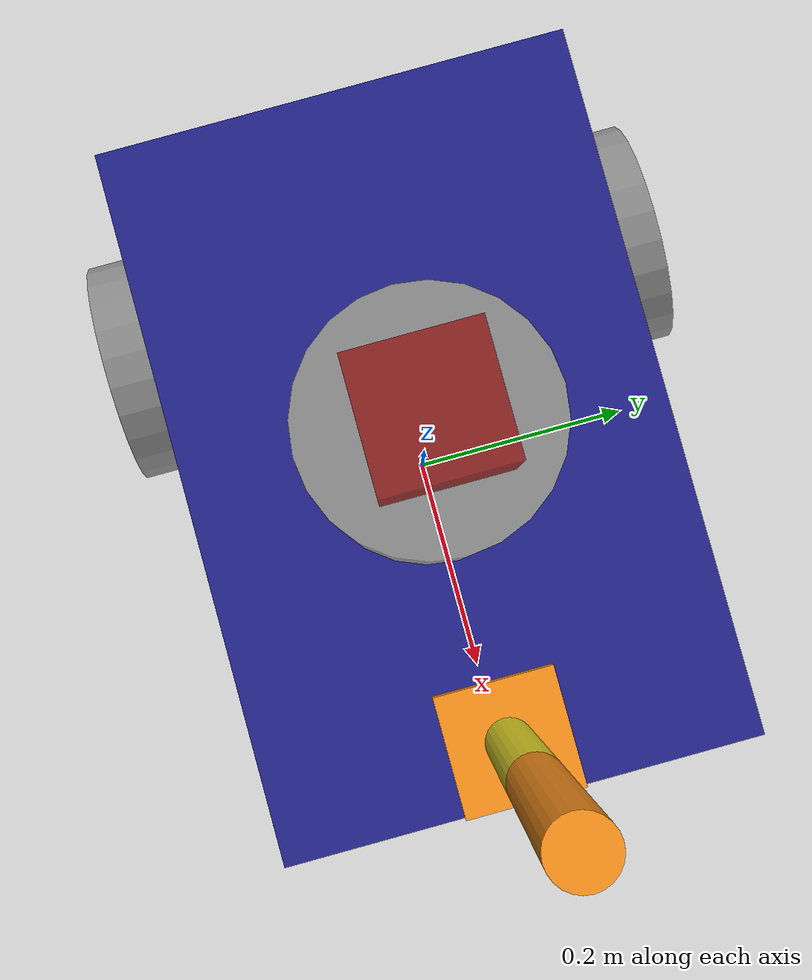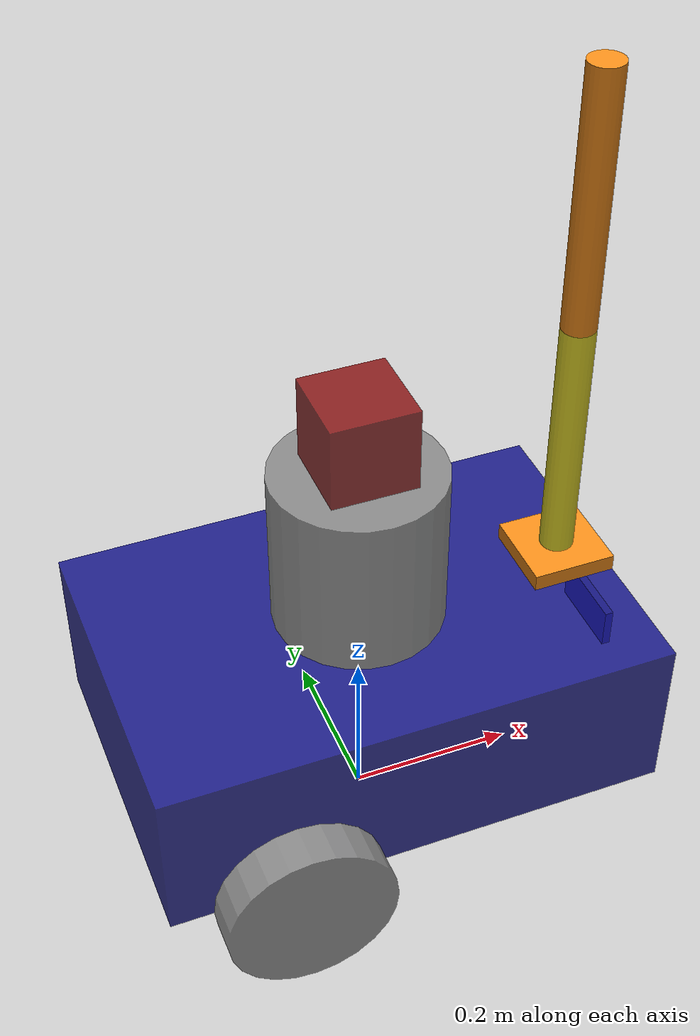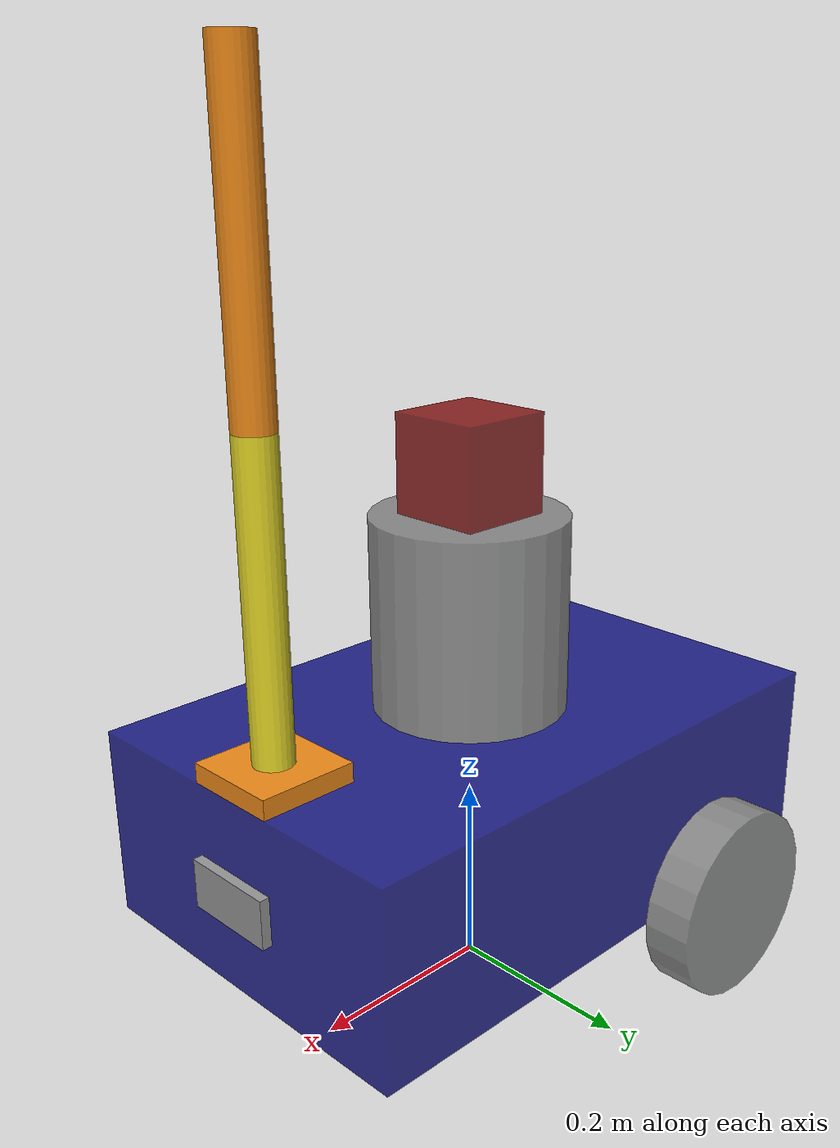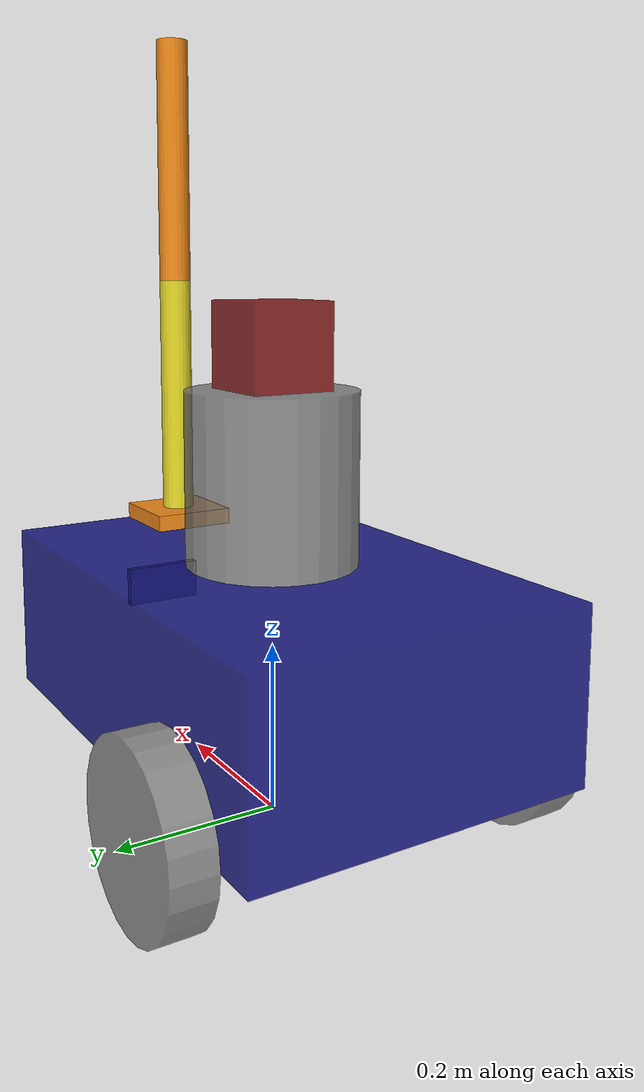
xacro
<?xml version="1.0"?>
<robot name="cagopa_robot" xmlns:xacro="http://www.ros.org/wiki/xacro">

    <xacro:include filename="common_properties.xacro"/>
    <xacro:include filename="mobile_base.xacro"/>
    <xacro:include filename="mobile_base_gazebo.xacro"/>
    --<xacro:include filename="camera.xacro"/>
    <xacro:include filename="arm_properties.xacro"/>
    <xacro:include filename="arm.xacro"/>

    <joint name="base_arm_base_joint" type="fixed">
        <parent link="base_link"/>
        <child link="arm_base_link"/>
        <origin xyz="${(base_length/2.0)-(0.1/2.0)} 0 ${base_height}" rpy="0 0 0"/>

    </joint>
</robot>

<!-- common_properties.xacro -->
<robot xmlns:xacro="http://www.ros.org/wiki/xacro">

    <material name="blue">
        <color rgba="0 0 0.5 0.8" />
    </material>

    <material name="gray">
        <color rgba="0.5 0.5 0.5 0.8"/>
    </material>

    <material name="red">
        <color rgba="0.5 0 0 0.8" />
    </material>

    <xacro:macro name="box_inertia" params="m l w h xyz rpy">
        <inertial>
            <origin xyz="${xyz}" rpy="${rpy}"/>
            <mass value="${m}"/>
            <inertia ixx="${(m/12.0)*(h*h +l*l)}" ixy="0.0" ixz="0.0" iyy="${(m/12.0)*(w*w +l*l)}" iyz="0.0" izz="${(m/12.0)*(w*w +h*h)}"/>
        </inertial>
    </xacro:macro>

    <xacro:macro name="cylinder_inertia" params="m r l xyz rpy">
        <inertial>
            <origin xyz="${xyz}" rpy="${rpy}"/>
            <mass value="${m}"/>
            <inertia ixx="${(m/12.0)*(3*(r*r)+(l*l))}" ixy="0" ixz="0" iyy="${(m/12.0)*(3*(r*r)+(l*l))}" iyz="0" izz="${m/2.0*(r*r)}"/>
        </inertial>
    </xacro:macro>

    <xacro:macro name="sphere_inertia" params="m r xyz rpy">
        <inertial>
            <origin xyz="${xyz}" rpy="${rpy}"/>
            <mass value="${m}"/>
            <inertia ixx="${2.0/5.0 *(m*r*r)}" ixy="0" ixz="0" iyy="${2.0/5.0 *(m*r*r)}" iyz="0" izz="${2.0/5.0 *(m*r*r)}"/>
        </inertial>
    </xacro:macro>
</robot>

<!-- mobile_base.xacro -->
<robot xmlns:xacro="http://www.ros.org/wiki/xacro">

    <xacro:property name="base_length" value="0.6" />
    <xacro:property name="base_width" value="0.4" />
    <xacro:property name="base_height" value="0.2" />
    <xacro:property name="wheel_radius" value="0.1" />
    <xacro:property name="wheel_length" value="0.05" />
    <xacro:property name="box_length" value="0.1" />
    <xacro:property name="second_link_height" value="0.2" />
    <xacro:property name="second_link_radius" value="0.1" />
    <xacro:property name="wheel_mass" value="1.0" />
    <xacro:property name="caster_wheel_mass" value="0.5" />
    <xacro:property name="box_mass" value="5.0" />

    <link name="base_link">
        <visual>
            <geometry>
                <box size="${base_length} ${base_width} ${base_height}" />
            </geometry>
            <origin xyz="0 0 ${base_height/2.0}" rpy="0 0 0" />
            <material name="blue"/>
        </visual>
        <collision>
            <geometry>
                <box size="${base_length} ${base_width} ${base_height}" />
            </geometry>
            <origin xyz="0 0 ${base_height/2.0}" rpy="0 0 0" />
        </collision>
        <xacro:box_inertia m="${box_mass}" l="${2*base_length}" w="${2*base_width}" h="${2*base_height}"
                           xyz="0 0 ${base_height/2.0}" rpy="0 0 0"/>
    </link>

    <xacro:macro name="wheel_link" params="prefix">
        <link name="${prefix}_wheel_link">
            <visual>
                <geometry>
                    <cylinder radius="${wheel_radius}" length="${wheel_length}"/>
                </geometry>
                <origin xyz="0 0 0" rpy="${pi / 2.0} 0 0"/>
                <material name="gray"/>
            </visual>
            <collision>
                <geometry>
                    <cylinder radius="${wheel_radius}" length="${wheel_length}"/>
                </geometry>
                <origin xyz="0 0 0" rpy="${pi / 2.0} 0 0"/>
            </collision>
            <xacro:cylinder_inertia m="${wheel_mass}" r="${wheel_radius}" l="${wheel_length}"
                                    xyz="0 0 0" rpy="${pi / 2.0} 0 0"/>
        </link>
    </xacro:macro>

    <xacro:wheel_link prefix="right"/>
    <xacro:wheel_link prefix="left"/>

    <link name="caster_wheel_link">
        <visual>
            <geometry>
                <sphere radius="${wheel_radius/2.0}"/>
            </geometry>
            <origin xyz="0 0 ${-wheel_radius/2.0}" rpy="0 0 0"/>
            <material name="gray"/>
        </visual>
        <collision>
            <geometry>
                <sphere radius="${wheel_radius/2.0}"/>
            </geometry>
            <origin xyz="0 0 ${-wheel_radius/2.0}" rpy="0 0 0"/>
        </collision>
        <xacro:sphere_inertia m="${caster_wheel_mass}" r="${wheel_radius/2.0}" xyz="0 0 ${-wheel_radius/2.0}" rpy="0 0 0"/>
    </link>

    <link name="second_link">
        <visual>
            <geometry>
                <cylinder radius="${second_link_radius}" length="${second_link_height}"/>
            </geometry>
            <origin xyz="0 0 ${second_link_height/2.0}" rpy="0 0 0"/>
            <material name="gray"/>
        </visual>
        <collision>
            <geometry>
                <cylinder radius="${second_link_radius}" length="${second_link_height}"/>
            </geometry>
            <origin xyz="0 0 ${second_link_height/2.0}" rpy="0 0 0"/>
        </collision>
        <xacro:cylinder_inertia m="0.1" r="${second_link_radius}" l="${second_link_height}"
                                xyz="0 0 ${second_link_height/2.0}" rpy="0 0 0"/>
    </link>

    <link name="third_link">
        <visual>
            <geometry>
                <box size="${box_length} ${box_length} ${box_length}" />
            </geometry>
            <origin xyz="0 0 ${box_length/2.0}" rpy="0 0 0" />
            <material name="red"/>
        </visual>
        <collision>
            <geometry>
                <box size="${box_length} ${box_length} ${box_length}" />
            </geometry>
            <origin xyz="0 0 ${box_length/2.0}" rpy="0 0 0" />
        </collision>
        <xacro:box_inertia m="0.1" l="${box_length}" w="${box_length}" h="${box_length}"
                           xyz="0 0 ${box_length/2.0}" rpy="0 0 0"/>
    </link>

    <link name="base_footprint_link">

    </link>

    <joint name="base_to_footprint_link_joint" type="fixed">
        <parent link="base_footprint_link"/>
        <child link="base_link"/>
        <origin xyz="0 0 ${wheel_radius}" rpy="0 0 0"/>

    </joint>
    <joint name="base_second_link_joint" type="prismatic">
        <parent link="base_link"/>
        <child link="second_link"/>
        <origin xyz="0 0 ${base_height}" rpy="0 0 0"/>
        <axis xyz="1 0 0" />
        <limit lower="-0.1" upper="0.1" velocity="100" effort="100"/>
    </joint>

    <joint name="second_to_third_link_joint" type="revolute">
        <parent link="second_link"/>
        <child link="third_link"/>
        <origin xyz="0 0 ${second_link_height}" rpy="0 0 0"/>
        <axis xyz="0 0 1"/>
        <limit lower="-1.57" upper="1.57" velocity="100" effort="100" />
    </joint>

    <joint name="base_to_left_wheel_joint" type="continuous">
        <parent link="base_link"/>
        <child link="left_wheel_link"/>
        <origin xyz="${-base_length / 4.0} ${(-base_width-wheel_length)/2.0} 0" rpy="0 0 0"/>
        <axis xyz="0 1 0"/>
    </joint>
    <joint name="base_to_right_wheel_joint" type="continuous">
        <parent link="base_link"/>
        <child link="right_wheel_link"/>
        <origin xyz="${-base_length / 4.0} ${(base_width+wheel_length)/2.0} 0" rpy="0 0 0"/>
        <axis xyz="0 1 0"/>
    </joint>
    <joint name="base_to_caster_wheel_joint" type="fixed">
        <parent link="base_link"/>
        <child link="caster_wheel_link"/>
        <origin xyz="${base_length/3.0} 0 0" rpy="0 0 0"/>

    </joint>

</robot>

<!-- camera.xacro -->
<robot xmlns:xacro="http://www.ros.org/wiki/xacro">
    <xacro:property name="camera_length" value="0.01" />
    <xacro:property name="camera_width" value="0.1" />
    <xacro:property name="camera_heigth" value="0.05" />

    <link name="camera_link">
        <visual>
            <geometry>
                <box size="${camera_length} ${camera_width} ${camera_heigth}"/>
            </geometry>
            <material name="grey"/>
            <origin xyz="0 0 0" rpy="0 0 0" />
        </visual>
        <collision>
            <geometry>
                <box size="${camera_length} ${camera_width} ${camera_heigth}"/>
            </geometry>
            <origin xyz="0 0 0" rpy="0 0 0" />
        </collision>
        <xacro:box_inertia m="0.1" l="${camera_length}" w="${camera_width}" h="${camera_heigth}"
                           xyz="0 0 0" rpy="0 0 0"/>

    </link>

    <joint name="camera_to_base_link_joint" type="fixed">
        <parent link="base_link"/>
        <child link="camera_link"/>
        <origin xyz="${base_length/2.0+(camera_length/2.0)} 0 ${(base_height/2.0)}" rpy="0 0 0"/>
        <axis xyz="0 0 0" />
    </joint>

    <link name="camera_link_optical">
    </link>

    <joint name="camera_optical_joint" type="fixed">
        <!-- these values have to be these values otherwise the gazebo camera
            image won't be aligned properly with the frame it is supposedly
            originating from -->
        <origin xyz="0 0 0" rpy="${-pi/2} 0 ${-pi/2}"/>
        <parent link="camera_link"/>
        <child link="camera_link_optical"/>
    </joint>

    <gazebo reference="camera_link">
        <material>Gazebo/Green</material>
        <sensor name="camera_sensor" type="camera">
            <pose>0 0 0 0 0 0</pose>
            <visualize>true</visualize>
            <update_rate>10.0</update_rate>

            <plugin name="camera_controller" filename="libgazebo_ros_camera.so">

                <ros>

                </ros>

                <!-- Set camera name. If empty, defaults to sensor name -->

                <!-- Set TF frame name. If empty, defaults to link name -->
                <frame_name>camera_link_optical</frame_name>

                <!-- Set to true to turn on triggering -->

                <!-- Set some projection matrix fields-->
                <!-- Projection matrix principal point cx-->

                <!-- Projection matrix principal point cy-->

                <!-- Projection matrix focal length fy-->

                <!-- Projection matrix translation Tx, Ty between stereo cameras-->

                <!-- Full 3x3 rectification matrix. Values are in row-major order -->

            </plugin>

        </sensor>
    </gazebo>

</robot>

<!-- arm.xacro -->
<robot xmlns:xacro="http://www.ros.org/wiki/xacro">

    <xacro:property name="arm_base_length" value="0.1" />
    <xacro:property name="arm_base_width" value="0.1" />
    <xacro:property name="arm_base_heigth" value="0.02" />
    <xacro:property name="forearm_radius" value="0.02" />
    <xacro:property name="forearm_length" value="0.3" />
    <xacro:property name="hand_radius" value="0.02" />
    <xacro:property name="hand_length" value="0.3" />

    <link name="arm_base_link">
        <visual>
            <geometry>
                <box size="${arm_base_length} ${arm_base_width} ${arm_base_heigth}" />
            </geometry>
            <origin xyz="0 0 ${arm_base_heigth/2.0}" rpy="0 0 0" />

        </visual>
        <collision>
            <geometry>
                <box size="${arm_base_length} ${arm_base_width} ${arm_base_heigth}" />
            </geometry>
            <origin xyz="0 0 ${arm_base_heigth/2.0}" rpy="0 0 0" />
        </collision>
        <xacro:box_inertia m="0.5" l="${2*arm_base_length}" w="${2*arm_base_width}" h="${2*arm_base_heigth}"
                           xyz="0 0 ${arm_base_heigth/2.0}" rpy="0 0 0"/>
    </link>

    <link name="forearm_link">
        <visual>
            <geometry>
                <cylinder radius="${forearm_radius}" length="${forearm_length}"/>
            </geometry>
            <origin xyz="0 0 ${forearm_length/2.0}" rpy="0 0 0" />
        </visual>
        <collision>
            <geometry>
                <cylinder radius="${forearm_radius}" length="${forearm_length}"/>
            </geometry>
            <origin xyz="0 0 ${forearm_length/2.0}" rpy="0 0 0" />
        </collision>
        <xacro:cylinder_inertia m="0.4" r="${forearm_radius}" l="${forearm_length}"
                                    xyz="0 0 0" rpy="0 0 0"/>
    </link>

    <link name="hand_link">
        <visual>
            <geometry>
                <cylinder radius="${hand_radius}" length="${hand_length}"/>
            </geometry>
            <origin xyz="0 0 ${hand_length/2.0}" rpy="0 0 0" />
        </visual>
        <collision>
            <geometry>
                <cylinder radius="${hand_radius}" length="${hand_length}"/>
            </geometry>
            <origin xyz="0 0 ${hand_length/2.0}" rpy="0 0 0" />
        </collision>
        <xacro:cylinder_inertia m="0.4" r="${hand_radius}" l="${hand_length}"
                                    xyz="0 0 0" rpy="0 0 0"/>
    </link>

    <joint name="arm_base_forearm_joint" type="revolute">
        <parent link="arm_base_link"/>
        <child link="forearm_link"/>
        <origin xyz="0 0 ${arm_base_heigth}" rpy="0 0 0"/>
        <axis xyz="0 1 0"/>
        <limit lower="0" upper="${pi/2.0}" velocity="100" effort="100"/>
        <dynamics friction="0.01" damping="0.01"/>
    </joint>

    <joint name="forearm_hand_joint" type="revolute">
        <parent link="forearm_link"/>
        <child link="hand_link"/>
        <origin xyz="0 0 ${forearm_length}" rpy="0 0 0"/>
        <axis xyz="0 1 0" />
        <limit lower="0" upper="${pi/2.0}" velocity="100" effort="100"/>
        <dynamics friction="0.01" damping="0.01"/>
    </joint>

</robot>
